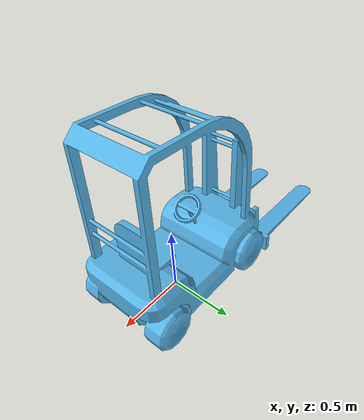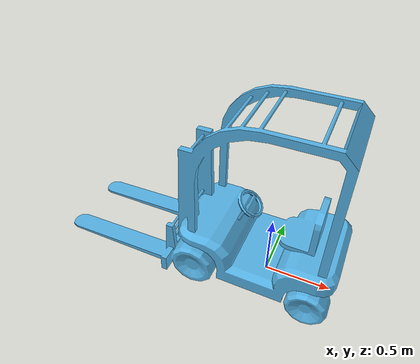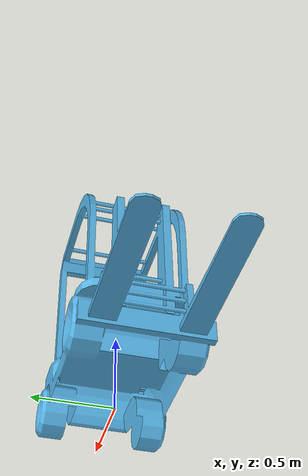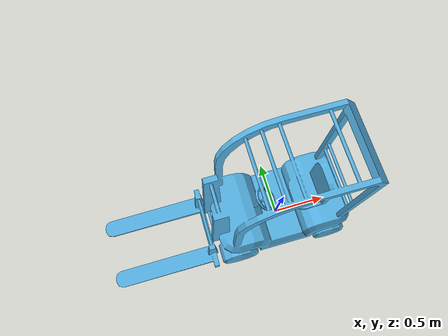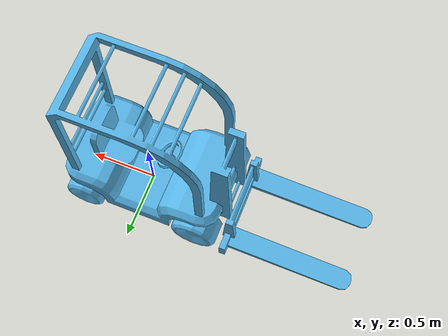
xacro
<?xml version="1.0" ?>
<robot name="forklift" xmlns:xacro="http://www.ros.org/wiki/xacro">

  <xacro:arg name="forklift_prefix" default="forklift_"/>
  <xacro:arg name="forklift_parent" default="world_interface"/>

  <xacro:arg name="x" default="0"/>
  <xacro:arg name="y" default="0"/>
  <xacro:arg name="z" default="0"/>
  <xacro:arg name="Y" default="0"/>

  <!-- URDF -->
  <xacro:include filename="$(find casus_support)/urdf/forklift/forklift.urdf.xacro"/>
  <xacro:forklift_urdf forklift_prefix="$(arg forklift_prefix)" forklift_parent="$(arg forklift_parent)">
    <origin xyz="$(arg x) $(arg y) $(arg z)" rpy="0 0 $(arg Y)"/>
  </xacro:forklift_urdf>

  <!-- Gazebo -->
  <xacro:include filename="$(find casus_support)/urdf/forklift/forklift.gazebo.xacro"/>
</robot>

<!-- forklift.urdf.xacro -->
<robot name="forklift_urdf" xmlns:xacro="http://www.ros.org/wiki/xacro">
    <xacro:macro name="forklift_urdf" params="forklift_parent forklift_prefix *origin">

  <joint name="${forklift_prefix}joint" type="fixed">
    <xacro:insert_block name="origin" />
    <parent link="${forklift_parent}"/>
    <child link="${forklift_prefix}origin"/>
  </joint>

    <!-- Links -->
<link name="${forklift_parent}"/>
    <link name="${forklift_prefix}origin">
      <visual>
        <geometry>
          <mesh filename="package://casus_support/meshes/forklift/visual/forklift.dae"/>
        </geometry>
      </visual>
      <collision>
        <geometry>
          <mesh filename="package://casus_support/meshes/forklift/collision/forklift.dae"/>
        </geometry>
      </collision>
      <inertial>
        <inertia ixx="1.0" ixy="0" ixz="0"
                 iyy="1.0" iyz="0"
                 izz="1.0" />
        <mass value="100" />
      </inertial>
    </link>
  </xacro:macro>
</robot>
